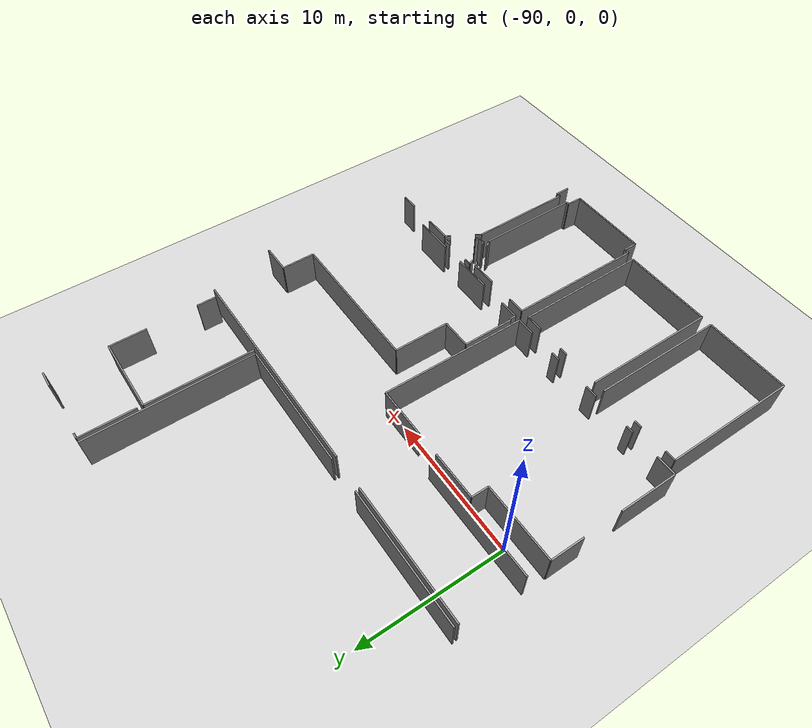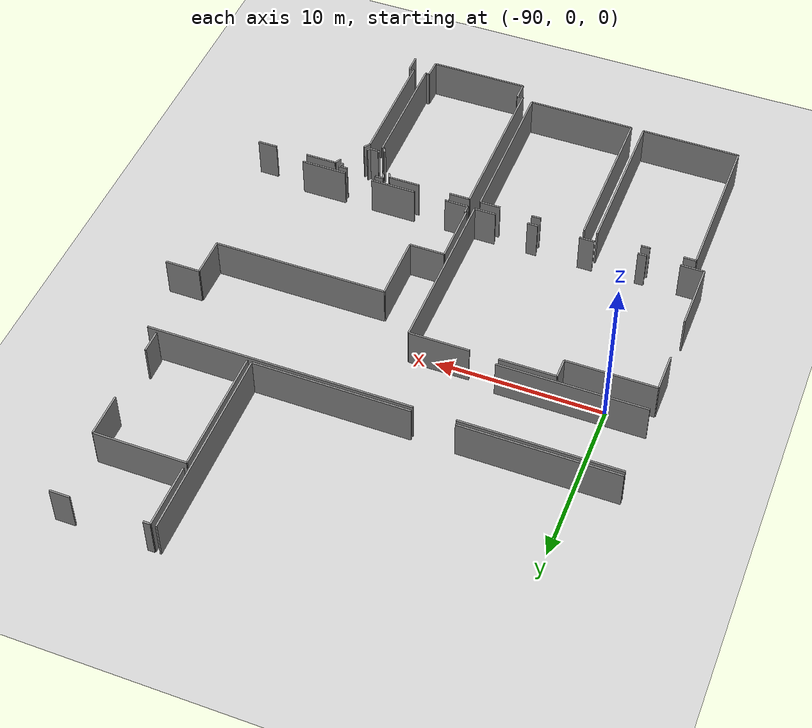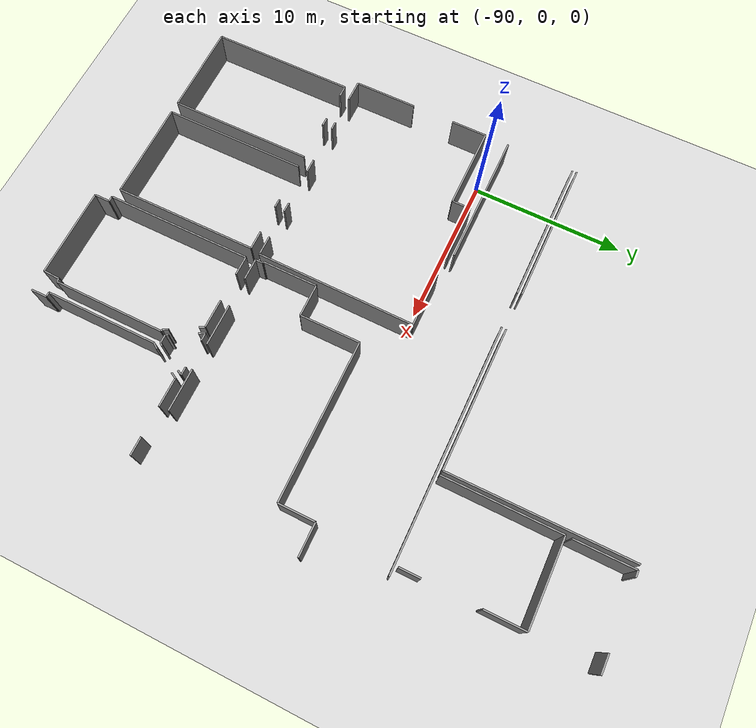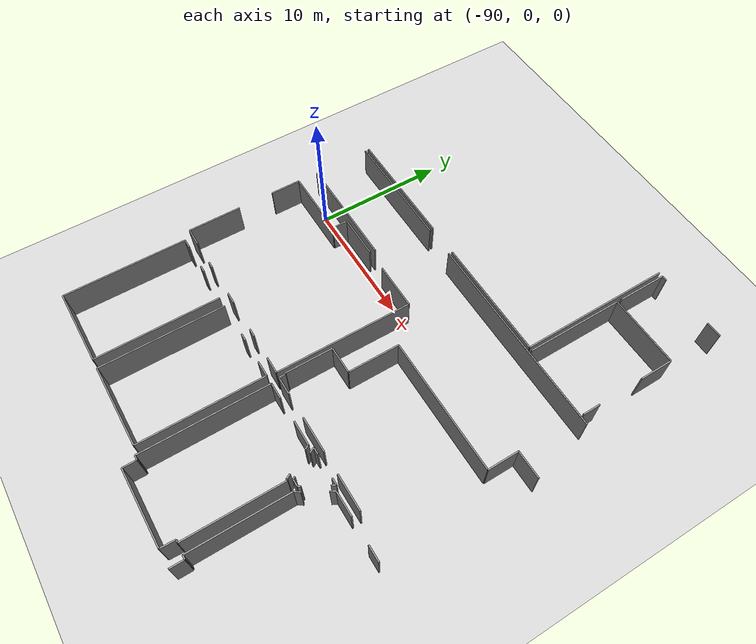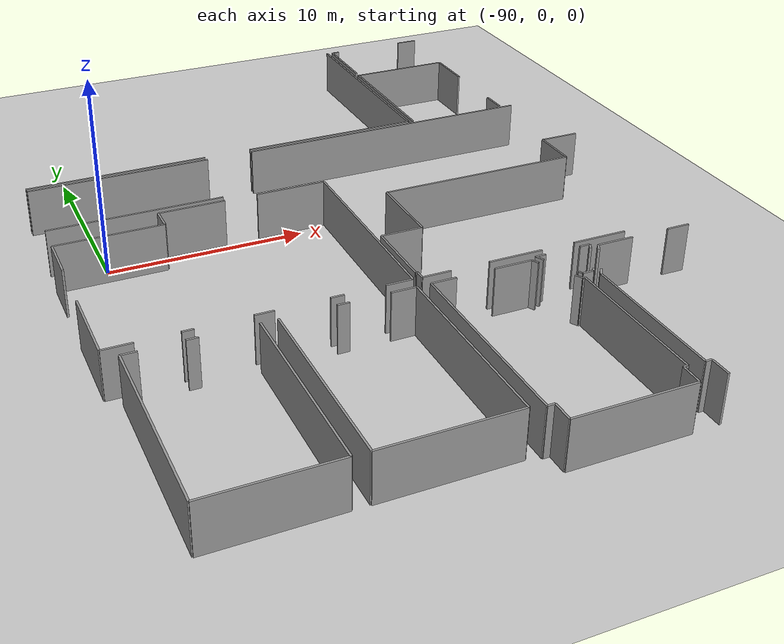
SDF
<sdf version="1.6">
 <world name="default">
  <model name="ground_plane">
   <static>1</static>
   <link name="link">
    <collision name="collision">
     <geometry><plane><normal>0 0 1</normal><size>100 100</size></plane></geometry>
     <surface><friction><ode><mu>100</mu><mu2>50</mu2></ode></friction></surface>
    </collision>
    <visual name="visual">
     <cast_shadows>0</cast_shadows>
     <geometry><plane><normal>0 0 1</normal><size>100 100</size></plane></geometry>
     <material>
      <script><uri>file://media/materials/scripts/gazebo.material</uri><name>Gazebo/Grey</name></script>
     </material>
    </visual>
   </link>
  </model>
  <model name="50037764_PLAN2">
   <static>1</static>
   <link name="Wall_70">
    <collision name="Wall_70_Collision">
     <geometry><box><size>8.79861711322 0.1 2.5</size></box></geometry>
     <pose>4.39930855661 0 1.25 0 0 0</pose>
    </collision>
    <visual name="Wall_70_Visual">
     <pose>4.39930855661 0 1.25 0 0 0</pose>
     <geometry><box><size>8.79861711322 0.1 2.5</size></box></geometry>
     <material>
      <script><uri>file://media/materials/scripts/gazebo.material</uri><name>Gazebo/Grey</name></script>
      <ambient>1 1 1 1</ambient>
     </material>
    </visual>
    <pose>52.0028471198 -20.5119731557 0 0 0 3.14159265359</pose>
   </link>
   <link name="Wall_71">
    <collision name="Wall_71_Collision">
     <geometry><box><size>9.42294981951 0.1 2.5</size></box></geometry>
     <pose>4.71147490976 0 1.25 0 0 0</pose>
    </collision>
    <visual name="Wall_71_Visual">
     <pose>4.71147490976 0 1.25 0 0 0</pose>
     <geometry><box><size>9.42294981951 0.1 2.5</size></box></geometry>
     <material>
      <script><uri>file://media/materials/scripts/gazebo.material</uri><name>Gazebo/Grey</name></script>
      <ambient>1 1 1 1</ambient>
     </material>
    </visual>
    <pose>43.2042300066 -16.0676699375 0 0 0 0.0</pose>
   </link>
   <link name="Wall_72">
    <collision name="Wall_72_Collision">
     <geometry><box><size>15.8955717118 0.1 2.5</size></box></geometry>
     <pose>7.94778585592 0 1.25 0 0 0</pose>
    </collision>
    <visual name="Wall_72_Visual">
     <pose>7.94778585592 0 1.25 0 0 0</pose>
     <geometry><box><size>15.8955717118 0.1 2.5</size></box></geometry>
     <material>
      <script><uri>file://media/materials/scripts/gazebo.material</uri><name>Gazebo/Grey</name></script>
      <ambient>1 1 1 1</ambient>
     </material>
    </visual>
    <pose>55.0833290965 -16.0676699375 0 0 0 0.0</pose>
   </link>
   <link name="Wall_74">
    <collision name="Wall_74_Collision">
     <geometry><box><size>9.39778331384 0.1 2.5</size></box></geometry>
     <pose>4.69889165692 0 1.25 0 0 0</pose>
    </collision>
    <visual name="Wall_74_Visual">
     <pose>4.69889165692 0 1.25 0 0 0</pose>
     <geometry><box><size>9.39778331384 0.1 2.5</size></box></geometry>
     <material>
      <script><uri>file://media/materials/scripts/gazebo.material</uri><name>Gazebo/Grey</name></script>
      <ambient>1 1 1 1</ambient>
     </material>
    </visual>
    <pose>64.4925517312 -15.7861355432 0 0 0 3.14159265359</pose>
   </link>
   <link name="Wall_75">
    <collision name="Wall_75_Collision">
     <geometry><box><size>9.39066551426 0.1 2.5</size></box></geometry>
     <pose>4.69533275713 0 1.25 0 0 0</pose>
    </collision>
    <visual name="Wall_75_Visual">
     <pose>4.69533275713 0 1.25 0 0 0</pose>
     <geometry><box><size>9.39066551426 0.1 2.5</size></box></geometry>
     <material>
      <script><uri>file://media/materials/scripts/gazebo.material</uri><name>Gazebo/Grey</name></script>
      <ambient>1 1 1 1</ambient>
     </material>
    </visual>
    <pose>52.5765926077 -15.7861355432 0 0 0 3.14159265359</pose>
   </link>
   <link name="Wall_79">
    <collision name="Wall_79_Collision">
     <geometry><box><size>11.6799027095 0.1 2.5</size></box></geometry>
     <pose>5.83995135473 0 1.25 0 0 0</pose>
    </collision>
    <visual name="Wall_79_Visual">
     <pose>5.83995135473 0 1.25 0 0 0</pose>
     <geometry><box><size>11.6799027095 0.1 2.5</size></box></geometry>
     <material>
      <script><uri>file://media/materials/scripts/gazebo.material</uri><name>Gazebo/Grey</name></script>
      <ambient>1 1 1 1</ambient>
     </material>
    </visual>
    <pose>64.4579795617 -4.1062840002 0 0 0 -1.56783635181</pose>
   </link>
   <link name="Wall_80">
    <collision name="Wall_80_Collision">
     <geometry><box><size>1.31374243734 0.1 2.5</size></box></geometry>
     <pose>0.656871218669 0 1.25 0 0 0</pose>
    </collision>
    <visual name="Wall_80_Visual">
     <pose>0.656871218669 0 1.25 0 0 0</pose>
     <geometry><box><size>1.31374243734 0.1 2.5</size></box></geometry>
     <material>
      <script><uri>file://media/materials/scripts/gazebo.material</uri><name>Gazebo/Grey</name></script>
      <ambient>1 1 1 1</ambient>
     </material>
    </visual>
    <pose>57.1896893589 -31.3437388784 0 0 0 3.14159265359</pose>
   </link>
   <link name="Wall_81">
    <collision name="Wall_81_Collision">
     <geometry><box><size>0.640093548223 0.1 2.5</size></box></geometry>
     <pose>0.320046774112 0 1.25 0 0 0</pose>
    </collision>
    <visual name="Wall_81_Visual">
     <pose>0.320046774112 0 1.25 0 0 0</pose>
     <geometry><box><size>0.640093548223 0.1 2.5</size></box></geometry>
     <material>
      <script><uri>file://media/materials/scripts/gazebo.material</uri><name>Gazebo/Grey</name></script>
      <ambient>1 1 1 1</ambient>
     </material>
    </visual>
    <pose>53.8898266307 -31.3437388784 0 0 0 3.14159265359</pose>
   </link>
   <link name="Wall_82">
    <collision name="Wall_82_Collision">
     <geometry><box><size>0.912095175149 0.1 2.5</size></box></geometry>
     <pose>0.456047587574 0 1.25 0 0 0</pose>
    </collision>
    <visual name="Wall_82_Visual">
     <pose>0.456047587574 0 1.25 0 0 0</pose>
     <geometry><box><size>0.912095175149 0.1 2.5</size></box></geometry>
     <material>
      <script><uri>file://media/materials/scripts/gazebo.material</uri><name>Gazebo/Grey</name></script>
      <ambient>1 1 1 1</ambient>
     </material>
    </visual>
    <pose>50.6888504754 -31.3437388784 0 0 0 3.14159265359</pose>
   </link>
   <link name="Wall_83">
    <collision name="Wall_83_Collision">
     <geometry><box><size>0.539681732676 0.1 2.5</size></box></geometry>
     <pose>0.269840866338 0 1.25 0 0 0</pose>
    </collision>
    <visual name="Wall_83_Visual">
     <pose>0.269840866338 0 1.25 0 0 0</pose>
     <geometry><box><size>0.539681732676 0.1 2.5</size></box></geometry>
     <material>
      <script><uri>file://media/materials/scripts/gazebo.material</uri><name>Gazebo/Grey</name></script>
      <ambient>1 1 1 1</ambient>
     </material>
    </visual>
    <pose>47.1546087752 -31.3437388784 0 0 0 3.14159265359</pose>
   </link>
   <link name="Wall_84">
    <collision name="Wall_84_Collision">
     <geometry><box><size>1.41644211704 0.1 2.5</size></box></geometry>
     <pose>0.708221058518 0 1.25 0 0 0</pose>
    </collision>
    <visual name="Wall_84_Visual">
     <pose>0.708221058518 0 1.25 0 0 0</pose>
     <geometry><box><size>1.41644211704 0.1 2.5</size></box></geometry>
     <material>
      <script><uri>file://media/materials/scripts/gazebo.material</uri><name>Gazebo/Grey</name></script>
      <ambient>1 1 1 1</ambient>
     </material>
    </visual>
    <pose>44.6133001169 -31.3437388784 0 0 0 3.14159265359</pose>
   </link>
   <link name="Wall_85">
    <collision name="Wall_85_Collision">
     <geometry><box><size>4.10061518125 0.1 2.5</size></box></geometry>
     <pose>2.05030759062 0 1.25 0 0 0</pose>
    </collision>
    <visual name="Wall_85_Visual">
     <pose>2.05030759062 0 1.25 0 0 0</pose>
     <geometry><box><size>4.10061518125 0.1 2.5</size></box></geometry>
     <material>
      <script><uri>file://media/materials/scripts/gazebo.material</uri><name>Gazebo/Grey</name></script>
      <ambient>1 1 1 1</ambient>
     </material>
    </visual>
    <pose>43.1968579999 -31.3437388784 0 0 0 1.57079632679</pose>
   </link>
   <link name="Wall_86">
    <collision name="Wall_86_Collision">
     <geometry><box><size>2.33997661294 0.1 2.5</size></box></geometry>
     <pose>1.16998830647 0 1.25 0 0 0</pose>
    </collision>
    <visual name="Wall_86_Visual">
     <pose>1.16998830647 0 1.25 0 0 0</pose>
     <geometry><box><size>2.33997661294 0.1 2.5</size></box></geometry>
     <material>
      <script><uri>file://media/materials/scripts/gazebo.material</uri><name>Gazebo/Grey</name></script>
      <ambient>1 1 1 1</ambient>
     </material>
    </visual>
    <pose>43.1968579999 -24.455742539 0 0 0 1.57079632679</pose>
   </link>
   <link name="Wall_87">
    <collision name="Wall_87_Collision">
     <geometry><box><size>5.38207331334 0.1 2.5</size></box></geometry>
     <pose>2.69103665667 0 1.25 0 0 0</pose>
    </collision>
    <visual name="Wall_87_Visual">
     <pose>2.69103665667 0 1.25 0 0 0</pose>
     <geometry><box><size>5.38207331334 0.1 2.5</size></box></geometry>
     <material>
      <script><uri>file://media/materials/scripts/gazebo.material</uri><name>Gazebo/Grey</name></script>
      <ambient>1 1 1 1</ambient>
     </material>
    </visual>
    <pose>43.1968579999 -22.1157659261 0 0 0 0.0</pose>
   </link>
   <link name="Wall_88">
    <collision name="Wall_88_Collision">
     <geometry><box><size>1.20824647923 0.1 2.5</size></box></geometry>
     <pose>0.604123239616 0 1.25 0 0 0</pose>
    </collision>
    <visual name="Wall_88_Visual">
     <pose>0.604123239616 0 1.25 0 0 0</pose>
     <geometry><box><size>1.20824647923 0.1 2.5</size></box></geometry>
     <material>
      <script><uri>file://media/materials/scripts/gazebo.material</uri><name>Gazebo/Grey</name></script>
      <ambient>1 1 1 1</ambient>
     </material>
    </visual>
    <pose>48.5789313132 -22.1157659261 0 0 0 1.57079632679</pose>
   </link>
   <link name="Wall_89">
    <collision name="Wall_89_Collision">
     <geometry><box><size>3.38476790889 0.1 2.5</size></box></geometry>
     <pose>1.69238395445 0 1.25 0 0 0</pose>
    </collision>
    <visual name="Wall_89_Visual">
     <pose>1.69238395445 0 1.25 0 0 0</pose>
     <geometry><box><size>3.38476790889 0.1 2.5</size></box></geometry>
     <material>
      <script><uri>file://media/materials/scripts/gazebo.material</uri><name>Gazebo/Grey</name></script>
      <ambient>1 1 1 1</ambient>
     </material>
    </visual>
    <pose>48.5789313132 -20.9075194468 0 0 0 0.0</pose>
   </link>
   <link name="Wall_90">
    <collision name="Wall_90_Collision">
     <geometry><box><size>3.60491128171 0.1 2.5</size></box></geometry>
     <pose>1.80245564086 0 1.25 0 0 0</pose>
    </collision>
    <visual name="Wall_90_Visual">
     <pose>1.80245564086 0 1.25 0 0 0</pose>
     <geometry><box><size>3.60491128171 0.1 2.5</size></box></geometry>
     <material>
      <script><uri>file://media/materials/scripts/gazebo.material</uri><name>Gazebo/Grey</name></script>
      <ambient>1 1 1 1</ambient>
     </material>
    </visual>
    <pose>53.6562102801 -20.9075194468 0 0 0 0.0</pose>
   </link>
   <link name="Wall_91">
    <collision name="Wall_91_Collision">
     <geometry><box><size>10.4364638927 0.1 2.5</size></box></geometry>
     <pose>5.21823194636 0 1.25 0 0 0</pose>
    </collision>
    <visual name="Wall_91_Visual">
     <pose>5.21823194636 0 1.25 0 0 0</pose>
     <geometry><box><size>10.4364638927 0.1 2.5</size></box></geometry>
     <material>
      <script><uri>file://media/materials/scripts/gazebo.material</uri><name>Gazebo/Grey</name></script>
      <ambient>1 1 1 1</ambient>
     </material>
    </visual>
    <pose>57.2611215618 -20.9075194468 0 0 0 -1.57764086355</pose>
   </link>
   <link name="Wall_92">
    <collision name="Wall_92_Collision">
     <geometry><box><size>5.9825105496 0.1 2.5</size></box></geometry>
     <pose>2.9912552748 0 1.25 0 0 0</pose>
    </collision>
    <visual name="Wall_92_Visual">
     <pose>2.9912552748 0 1.25 0 0 0</pose>
     <geometry><box><size>5.9825105496 0.1 2.5</size></box></geometry>
     <material>
      <script><uri>file://media/materials/scripts/gazebo.material</uri><name>Gazebo/Grey</name></script>
      <ambient>1 1 1 1</ambient>
     </material>
    </visual>
    <pose>49.8364939753 -41.402460725 0 0 0 3.14159265359</pose>
   </link>
   <link name="Wall_93">
    <collision name="Wall_93_Collision">
     <geometry><box><size>9.40159642076 0.1 2.5</size></box></geometry>
     <pose>4.70079821038 0 1.25 0 0 0</pose>
    </collision>
    <visual name="Wall_93_Visual">
     <pose>4.70079821038 0 1.25 0 0 0</pose>
     <geometry><box><size>9.40159642076 0.1 2.5</size></box></geometry>
     <material>
      <script><uri>file://media/materials/scripts/gazebo.material</uri><name>Gazebo/Grey</name></script>
      <ambient>1 1 1 1</ambient>
     </material>
    </visual>
    <pose>43.8539834257 -41.402460725 0 0 0 1.57079632679</pose>
   </link>
   <link name="Wall_94">
    <collision name="Wall_94_Collision">
     <geometry><box><size>0.744826884946 0.1 2.5</size></box></geometry>
     <pose>0.372413442473 0 1.25 0 0 0</pose>
    </collision>
    <visual name="Wall_94_Visual">
     <pose>0.372413442473 0 1.25 0 0 0</pose>
     <geometry><box><size>0.744826884946 0.1 2.5</size></box></geometry>
     <material>
      <script><uri>file://media/materials/scripts/gazebo.material</uri><name>Gazebo/Grey</name></script>
      <ambient>1 1 1 1</ambient>
     </material>
    </visual>
    <pose>43.8539834257 -32.0008643042 0 0 0 0.0</pose>
   </link>
   <link name="Wall_95">
    <collision name="Wall_95_Collision">
     <geometry><box><size>0.549087396411 0.1 2.5</size></box></geometry>
     <pose>0.274543698205 0 1.25 0 0 0</pose>
    </collision>
    <visual name="Wall_95_Visual">
     <pose>0.274543698205 0 1.25 0 0 0</pose>
     <geometry><box><size>0.549087396411 0.1 2.5</size></box></geometry>
     <material>
      <script><uri>file://media/materials/scripts/gazebo.material</uri><name>Gazebo/Grey</name></script>
      <ambient>1 1 1 1</ambient>
     </material>
    </visual>
    <pose>46.6004372363 -32.0008643042 0 0 0 0.0</pose>
   </link>
   <link name="Wall_96">
    <collision name="Wall_96_Collision">
     <geometry><box><size>9.4016096315 0.1 2.5</size></box></geometry>
     <pose>4.70080481575 0 1.25 0 0 0</pose>
    </collision>
    <visual name="Wall_96_Visual">
     <pose>4.70080481575 0 1.25 0 0 0</pose>
     <geometry><box><size>9.4016096315 0.1 2.5</size></box></geometry>
     <material>
      <script><uri>file://media/materials/scripts/gazebo.material</uri><name>Gazebo/Grey</name></script>
      <ambient>1 1 1 1</ambient>
     </material>
    </visual>
    <pose>49.8207331334 -32.0008643042 0 0 0 -1.56911992776</pose>
   </link>
   <link name="Wall_97">
    <collision name="Wall_97_Collision">
     <geometry><box><size>6.46016574305 0.1 2.5</size></box></geometry>
     <pose>3.23008287152 0 1.25 0 0 0</pose>
    </collision>
    <visual name="Wall_97_Visual">
     <pose>3.23008287152 0 1.25 0 0 0</pose>
     <geometry><box><size>6.46016574305 0.1 2.5</size></box></geometry>
     <material>
      <script><uri>file://media/materials/scripts/gazebo.material</uri><name>Gazebo/Grey</name></script>
      <ambient>1 1 1 1</ambient>
     </material>
    </visual>
    <pose>57.0803802939 -41.4217804667 0 0 0 3.14159265359</pose>
   </link>
   <link name="Wall_98">
    <collision name="Wall_98_Collision">
     <geometry><box><size>9.42549189079 0.1 2.5</size></box></geometry>
     <pose>4.7127459454 0 1.25 0 0 0</pose>
    </collision>
    <visual name="Wall_98_Visual">
     <pose>4.7127459454 0 1.25 0 0 0</pose>
     <geometry><box><size>9.42549189079 0.1 2.5</size></box></geometry>
     <material>
      <script><uri>file://media/materials/scripts/gazebo.material</uri><name>Gazebo/Grey</name></script>
      <ambient>1 1 1 1</ambient>
     </material>
    </visual>
    <pose>50.6202145508 -41.4217804667 0 0 0 1.57079632679</pose>
   </link>
   <link name="Wall_99">
    <collision name="Wall_99_Collision">
     <geometry><box><size>0.573491280696 0.1 2.5</size></box></geometry>
     <pose>0.286745640348 0 1.25 0 0 0</pose>
    </collision>
    <visual name="Wall_99_Visual">
     <pose>0.286745640348 0 1.25 0 0 0</pose>
     <geometry><box><size>0.573491280696 0.1 2.5</size></box></geometry>
     <material>
      <script><uri>file://media/materials/scripts/gazebo.material</uri><name>Gazebo/Grey</name></script>
      <ambient>1 1 1 1</ambient>
     </material>
    </visual>
    <pose>53.2863389089 -31.9962885759 0 0 0 0.0</pose>
   </link>
   <link name="Wall_100">
    <collision name="Wall_100_Collision">
     <geometry><box><size>1.24231023438 0.1 2.5</size></box></geometry>
     <pose>0.621155117189 0 1.25 0 0 0</pose>
    </collision>
    <visual name="Wall_100_Visual">
     <pose>0.621155117189 0 1.25 0 0 0</pose>
     <geometry><box><size>1.24231023438 0.1 2.5</size></box></geometry>
     <material>
      <script><uri>file://media/materials/scripts/gazebo.material</uri><name>Gazebo/Grey</name></script>
      <ambient>1 1 1 1</ambient>
     </material>
    </visual>
    <pose>55.8190045249 -31.9962885759 0 0 0 0.0</pose>
   </link>
   <link name="Wall_101">
    <collision name="Wall_101_Collision">
     <geometry><box><size>9.4255111733 0.1 2.5</size></box></geometry>
     <pose>4.71275558665 0 1.25 0 0 0</pose>
    </collision>
    <visual name="Wall_101_Visual">
     <pose>4.71275558665 0 1.25 0 0 0</pose>
     <geometry><box><size>9.4255111733 0.1 2.5</size></box></geometry>
     <material>
      <script><uri>file://media/materials/scripts/gazebo.material</uri><name>Gazebo/Grey</name></script>
      <ambient>1 1 1 1</ambient>
     </material>
    </visual>
    <pose>57.0613147593 -31.9962885759 0 0 0 -1.56877356673</pose>
   </link>
   <link name="Wall_106">
    <collision name="Wall_106_Collision">
     <geometry><box><size>2.77543342315 0.1 2.5</size></box></geometry>
     <pose>1.38771671158 0 1.25 0 0 0</pose>
    </collision>
    <visual name="Wall_106_Visual">
     <pose>1.38771671158 0 1.25 0 0 0</pose>
     <geometry><box><size>2.77543342315 0.1 2.5</size></box></geometry>
     <material>
      <script><uri>file://media/materials/scripts/gazebo.material</uri><name>Gazebo/Grey</name></script>
      <ambient>1 1 1 1</ambient>
     </material>
    </visual>
    <pose>68.2494788754 -31.3701764197 0 0 0 3.14159265359</pose>
   </link>
   <link name="Wall_107">
    <collision name="Wall_107_Collision">
     <geometry><box><size>2.7477248462 0.1 2.5</size></box></geometry>
     <pose>1.3738624231 0 1.25 0 0 0</pose>
    </collision>
    <visual name="Wall_107_Visual">
     <pose>1.3738624231 0 1.25 0 0 0</pose>
     <geometry><box><size>2.7477248462 0.1 2.5</size></box></geometry>
     <material>
      <script><uri>file://media/materials/scripts/gazebo.material</uri><name>Gazebo/Grey</name></script>
      <ambient>1 1 1 1</ambient>
     </material>
    </visual>
    <pose>63.7510295389 -31.3701764197 0 0 0 3.14159265359</pose>
   </link>
   <link name="Wall_108">
    <collision name="Wall_108_Collision">
     <geometry><box><size>1.42940668056 0.1 2.5</size></box></geometry>
     <pose>0.714703340282 0 1.25 0 0 0</pose>
    </collision>
    <visual name="Wall_108_Visual">
     <pose>0.714703340282 0 1.25 0 0 0</pose>
     <geometry><box><size>1.42940668056 0.1 2.5</size></box></geometry>
     <material>
      <script><uri>file://media/materials/scripts/gazebo.material</uri><name>Gazebo/Grey</name></script>
      <ambient>1 1 1 1</ambient>
     </material>
    </visual>
    <pose>59.0586201637 -31.3701764197 0 0 0 3.14159265359</pose>
   </link>
   <link name="Wall_109">
    <collision name="Wall_109_Collision">
     <geometry><box><size>0.489602928466 0.1 2.5</size></box></geometry>
     <pose>0.244801464233 0 1.25 0 0 0</pose>
    </collision>
    <visual name="Wall_109_Visual">
     <pose>0.244801464233 0 1.25 0 0 0</pose>
     <geometry><box><size>0.489602928466 0.1 2.5</size></box></geometry>
     <material>
      <script><uri>file://media/materials/scripts/gazebo.material</uri><name>Gazebo/Grey</name></script>
      <ambient>1 1 1 1</ambient>
     </material>
    </visual>
    <pose>57.6292134831 -31.3701764197 0 0 0 1.57079632679</pose>
   </link>
   <link name="Wall_110">
    <collision name="Wall_110_Collision">
     <geometry><box><size>0.0884640805328 0.1 2.5</size></box></geometry>
     <pose>0.0442320402664 0 1.25 0 0 0</pose>
    </collision>
    <visual name="Wall_110_Visual">
     <pose>0.0442320402664 0 1.25 0 0 0</pose>
     <geometry><box><size>0.0884640805328 0.1 2.5</size></box></geometry>
     <material>
      <script><uri>file://media/materials/scripts/gazebo.material</uri><name>Gazebo/Grey</name></script>
      <ambient>1 1 1 1</ambient>
     </material>
    </visual>
    <pose>57.6292134831 -30.8805734913 0 0 0 3.14159265359</pose>
   </link>
   <link name="Wall_111">
    <collision name="Wall_111_Collision">
     <geometry><box><size>3.64583862932 0.1 2.5</size></box></geometry>
     <pose>1.82291931466 0 1.25 0 0 0</pose>
    </collision>
    <visual name="Wall_111_Visual">
     <pose>1.82291931466 0 1.25 0 0 0</pose>
     <geometry><box><size>3.64583862932 0.1 2.5</size></box></geometry>
     <material>
      <script><uri>file://media/materials/scripts/gazebo.material</uri><name>Gazebo/Grey</name></script>
      <ambient>1 1 1 1</ambient>
     </material>
    </visual>
    <pose>57.5407494026 -30.8805734913 0 0 0 1.57079632679</pose>
   </link>
   <link name="Wall_112">
    <collision name="Wall_112_Collision">
     <geometry><box><size>2.13279780365 0.1 2.5</size></box></geometry>
     <pose>1.06639890183 0 1.25 0 0 0</pose>
    </collision>
    <visual name="Wall_112_Visual">
     <pose>1.06639890183 0 1.25 0 0 0</pose>
     <geometry><box><size>2.13279780365 0.1 2.5</size></box></geometry>
     <material>
      <script><uri>file://media/materials/scripts/gazebo.material</uri><name>Gazebo/Grey</name></script>
      <ambient>1 1 1 1</ambient>
     </material>
    </visual>
    <pose>57.5407494026 -27.234734862 0 0 0 0.0</pose>
   </link>
   <link name="Wall_113">
    <collision name="Wall_113_Collision">
     <geometry><box><size>3.95571711831 0.1 2.5</size></box></geometry>
     <pose>1.97785855915 0 1.25 0 0 0</pose>
    </collision>
    <visual name="Wall_113_Visual">
     <pose>1.97785855915 0 1.25 0 0 0</pose>
     <geometry><box><size>3.95571711831 0.1 2.5</size></box></geometry>
     <material>
      <script><uri>file://media/materials/scripts/gazebo.material</uri><name>Gazebo/Grey</name></script>
      <ambient>1 1 1 1</ambient>
     </material>
    </visual>
    <pose>59.6735472063 -27.234734862 0 0 0 1.57079632679</pose>
   </link>
   <link name="Wall_114">
    <collision name="Wall_114_Collision">
     <geometry><box><size>10.470791601 0.1 2.5</size></box></geometry>
     <pose>5.2353958005 0 1.25 0 0 0</pose>
    </collision>
    <visual name="Wall_114_Visual">
     <pose>5.2353958005 0 1.25 0 0 0</pose>
     <geometry><box><size>10.470791601 0.1 2.5</size></box></geometry>
     <material>
      <script><uri>file://media/materials/scripts/gazebo.material</uri><name>Gazebo/Grey</name></script>
      <ambient>1 1 1 1</ambient>
     </material>
    </visual>
    <pose>59.6735472063 -23.2790177437 0 0 0 0.0</pose>
   </link>
   <link name="Wall_115">
    <collision name="Wall_115_Collision">
     <geometry><box><size>2.36565153287 0.1 2.5</size></box></geometry>
     <pose>1.18282576643 0 1.25 0 0 0</pose>
    </collision>
    <visual name="Wall_115_Visual">
     <pose>1.18282576643 0 1.25 0 0 0</pose>
     <geometry><box><size>2.36565153287 0.1 2.5</size></box></geometry>
     <material>
      <script><uri>file://media/materials/scripts/gazebo.material</uri><name>Gazebo/Grey</name></script>
      <ambient>1 1 1 1</ambient>
     </material>
    </visual>
    <pose>70.1443388073 -23.2790177437 0 0 0 1.57079632679</pose>
   </link>
   <link name="Wall_116">
    <collision name="Wall_116_Collision">
     <geometry><box><size>2.10229294829 0.1 2.5</size></box></geometry>
     <pose>1.05114647415 0 1.25 0 0 0</pose>
    </collision>
    <visual name="Wall_116_Visual">
     <pose>1.05114647415 0 1.25 0 0 0</pose>
     <geometry><box><size>2.10229294829 0.1 2.5</size></box></geometry>
     <material>
      <script><uri>file://media/materials/scripts/gazebo.material</uri><name>Gazebo/Grey</name></script>
      <ambient>1 1 1 1</ambient>
     </material>
    </visual>
    <pose>70.1443388073 -20.9133662108 0 0 0 0.0</pose>
   </link>
   <link name="Wall_126">
    <collision name="Wall_126_Collision">
     <geometry><box><size>3.79610046266 0.1 2.5</size></box></geometry>
     <pose>1.89805023133 0 1.25 0 0 0</pose>
    </collision>
    <visual name="Wall_126_Visual">
     <pose>1.89805023133 0 1.25 0 0 0</pose>
     <geometry><box><size>3.79610046266 0.1 2.5</size></box></geometry>
     <material>
      <script><uri>file://media/materials/scripts/gazebo.material</uri><name>Gazebo/Grey</name></script>
      <ambient>1 1 1 1</ambient>
     </material>
    </visual>
    <pose>64.7930245564 -7.92882200417 0 0 0 1.57079632679</pose>
   </link>
   <link name="Wall_127">
    <collision name="Wall_127_Collision">
     <geometry><box><size>0.415120239972 0.1 2.5</size></box></geometry>
     <pose>0.207560119986 0 1.25 0 0 0</pose>
    </collision>
    <visual name="Wall_127_Visual">
     <pose>0.207560119986 0 1.25 0 0 0</pose>
     <geometry><box><size>0.415120239972 0.1 2.5</size></box></geometry>
     <material>
      <script><uri>file://media/materials/scripts/gazebo.material</uri><name>Gazebo/Grey</name></script>
      <ambient>1 1 1 1</ambient>
     </material>
    </visual>
    <pose>64.7930245564 -4.13272154151 0 0 0 0.0</pose>
   </link>
   <link name="Wall_128">
    <collision name="Wall_128_Collision">
     <geometry><box><size>1.19960343688 0.1 2.5</size></box></geometry>
     <pose>0.59980171844 0 1.25 0 0 0</pose>
    </collision>
    <visual name="Wall_128_Visual">
     <pose>0.59980171844 0 1.25 0 0 0</pose>
     <geometry><box><size>1.19960343688 0.1 2.5</size></box></geometry>
     <material>
      <script><uri>file://media/materials/scripts/gazebo.material</uri><name>Gazebo/Grey</name></script>
      <ambient>1 1 1 1</ambient>
     </material>
    </visual>
    <pose>69.4206111139 -4.13272154151 0 0 0 0.0</pose>
   </link>
   <link name="Wall_133">
    <collision name="Wall_133_Collision">
     <geometry><box><size>7.51743860898 0.1 2.5</size></box></geometry>
     <pose>3.75871930449 0 1.25 0 0 0</pose>
    </collision>
    <visual name="Wall_133_Visual">
     <pose>3.75871930449 0 1.25 0 0 0</pose>
     <geometry><box><size>7.51743860898 0.1 2.5</size></box></geometry>
     <material>
      <script><uri>file://media/materials/scripts/gazebo.material</uri><name>Gazebo/Grey</name></script>
      <ambient>1 1 1 1</ambient>
     </material>
    </visual>
    <pose>64.778280543 -15.8301133764 0 0 0 1.57079632679</pose>
   </link>
   <link name="Wall_134">
    <collision name="Wall_134_Collision">
     <geometry><box><size>5.53230972596 0.1 2.5</size></box></geometry>
     <pose>2.76615486298 0 1.25 0 0 0</pose>
    </collision>
    <visual name="Wall_134_Visual">
     <pose>2.76615486298 0 1.25 0 0 0</pose>
     <geometry><box><size>5.53230972596 0.1 2.5</size></box></geometry>
     <material>
      <script><uri>file://media/materials/scripts/gazebo.material</uri><name>Gazebo/Grey</name></script>
      <ambient>1 1 1 1</ambient>
     </material>
    </visual>
    <pose>64.778280543 -8.3126747674 0 0 0 0.0</pose>
   </link>
   <link name="Wall_135">
    <collision name="Wall_135_Collision">
     <geometry><box><size>2.58444760791 0.1 2.5</size></box></geometry>
     <pose>1.29222380396 0 1.25 0 0 0</pose>
    </collision>
    <visual name="Wall_135_Visual">
     <pose>1.29222380396 0 1.25 0 0 0</pose>
     <geometry><box><size>2.58444760791 0.1 2.5</size></box></geometry>
     <material>
      <script><uri>file://media/materials/scripts/gazebo.material</uri><name>Gazebo/Grey</name></script>
      <ambient>1 1 1 1</ambient>
     </material>
    </visual>
    <pose>70.310590269 -8.3126747674 0 0 0 -1.57079632679</pose>
   </link>
   <link name="Wall_136">
    <collision name="Wall_136_Collision">
     <geometry><box><size>1.35285563881 0.1 2.5</size></box></geometry>
     <pose>0.676427819407 0 1.25 0 0 0</pose>
    </collision>
    <visual name="Wall_136_Visual">
     <pose>0.676427819407 0 1.25 0 0 0</pose>
     <geometry><box><size>1.35285563881 0.1 2.5</size></box></geometry>
     <material>
      <script><uri>file://media/materials/scripts/gazebo.material</uri><name>Gazebo/Grey</name></script>
      <ambient>1 1 1 1</ambient>
     </material>
    </visual>
    <pose>70.310590269 -14.4772738828 0 0 0 -1.56591080063</pose>
   </link>
   <link name="Wall_143">
    <collision name="Wall_143_Collision">
     <geometry><box><size>0.546291118003 0.1 2.5</size></box></geometry>
     <pose>0.273145559001 0 1.25 0 0 0</pose>
    </collision>
    <visual name="Wall_143_Visual">
     <pose>0.273145559001 0 1.25 0 0 0</pose>
     <geometry><box><size>0.546291118003 0.1 2.5</size></box></geometry>
     <material>
      <script><uri>file://media/materials/scripts/gazebo.material</uri><name>Gazebo/Grey</name></script>
      <ambient>1 1 1 1</ambient>
     </material>
    </visual>
    <pose>64.8728455946 -33.875641873 0 0 0 3.14159265359</pose>
   </link>
   <link name="Wall_144">
    <collision name="Wall_144_Collision">
     <geometry><box><size>0.191516350281 0.1 2.5</size></box></geometry>
     <pose>0.0957581751406 0 1.25 0 0 0</pose>
    </collision>
    <visual name="Wall_144_Visual">
     <pose>0.0957581751406 0 1.25 0 0 0</pose>
     <geometry><box><size>0.191516350281 0.1 2.5</size></box></geometry>
     <material>
      <script><uri>file://media/materials/scripts/gazebo.material</uri><name>Gazebo/Grey</name></script>
      <ambient>1 1 1 1</ambient>
     </material>
    </visual>
    <pose>64.3265544766 -33.875641873 0 0 0 2.09027171334</pose>
   </link>
   <link name="Wall_145">
    <collision name="Wall_145_Collision">
     <geometry><box><size>0.420065645272 0.1 2.5</size></box></geometry>
     <pose>0.210032822636 0 1.25 0 0 0</pose>
    </collision>
    <visual name="Wall_145_Visual">
     <pose>0.210032822636 0 1.25 0 0 0</pose>
     <geometry><box><size>0.420065645272 0.1 2.5</size></box></geometry>
     <material>
      <script><uri>file://media/materials/scripts/gazebo.material</uri><name>Gazebo/Grey</name></script>
      <ambient>1 1 1 1</ambient>
     </material>
    </visual>
    <pose>63.3577711119 -32.1597437592 0 0 0 2.0344439358</pose>
   </link>
   <link name="Wall_146">
    <collision name="Wall_146_Collision">
     <geometry><box><size>0.534902600011 0.1 2.5</size></box></geometry>
     <pose>0.267451300005 0 1.25 0 0 0</pose>
    </collision>
    <visual name="Wall_146_Visual">
     <pose>0.267451300005 0 1.25 0 0 0</pose>
     <geometry><box><size>0.534902600011 0.1 2.5</size></box></geometry>
     <material>
      <script><uri>file://media/materials/scripts/gazebo.material</uri><name>Gazebo/Grey</name></script>
      <ambient>1 1 1 1</ambient>
     </material>
    </visual>
    <pose>63.1699120443 -31.7840256241 0 0 0 0.0137823972197</pose>
   </link>
   <link name="Wall_147">
    <collision name="Wall_147_Collision">
     <geometry><box><size>0.537168774722 0.1 2.5</size></box></geometry>
     <pose>0.268584387361 0 1.25 0 0 0</pose>
    </collision>
    <visual name="Wall_147_Visual">
     <pose>0.268584387361 0 1.25 0 0 0</pose>
     <geometry><box><size>0.537168774722 0.1 2.5</size></box></geometry>
     <material>
      <script><uri>file://media/materials/scripts/gazebo.material</uri><name>Gazebo/Grey</name></script>
      <ambient>1 1 1 1</ambient>
     </material>
    </visual>
    <pose>65.5185316996 -31.7860592811 0 0 0 0.0104113606659</pose>
   </link>
   <link name="Wall_148">
    <collision name="Wall_148_Collision">
     <geometry><box><size>0.349320554235 0.1 2.5</size></box></geometry>
     <pose>0.174660277117 0 1.25 0 0 0</pose>
    </collision>
    <visual name="Wall_148_Visual">
     <pose>0.174660277117 0 1.25 0 0 0</pose>
     <geometry><box><size>0.349320554235 0.1 2.5</size></box></geometry>
     <material>
      <script><uri>file://media/materials/scripts/gazebo.material</uri><name>Gazebo/Grey</name></script>
      <ambient>1 1 1 1</ambient>
     </material>
    </visual>
    <pose>66.055671361 -31.7804667243 0 0 0 -2.01296286545</pose>
   </link>
   <link name="Wall_149">
    <collision name="Wall_149_Collision">
     <geometry><box><size>0.232560623758 0.1 2.5</size></box></geometry>
     <pose>0.116280311879 0 1.25 0 0 0</pose>
    </collision>
    <visual name="Wall_149_Visual">
     <pose>0.116280311879 0 1.25 0 0 0</pose>
     <geometry><box><size>0.232560623758 0.1 2.5</size></box></geometry>
     <material>
      <script><uri>file://media/materials/scripts/gazebo.material</uri><name>Gazebo/Grey</name></script>
      <ambient>1 1 1 1</ambient>
     </material>
    </visual>
    <pose>65.0052875083 -33.6844781128 0 0 0 -2.17668665233</pose>
   </link>
   <link name="Wall_157">
    <collision name="Wall_157_Collision">
     <geometry><box><size>5.86430423509 0.1 2.5</size></box></geometry>
     <pose>2.93215211755 0 1.25 0 0 0</pose>
    </collision>
    <visual name="Wall_157_Visual">
     <pose>2.93215211755 0 1.25 0 0 0</pose>
     <geometry><box><size>5.86430423509 0.1 2.5</size></box></geometry>
     <material>
      <script><uri>file://media/materials/scripts/gazebo.material</uri><name>Gazebo/Grey</name></script>
      <ambient>1 1 1 1</ambient>
     </material>
    </visual>
    <pose>63.963800905 -42.6424830952 0 0 0 3.14159265359</pose>
   </link>
   <link name="Wall_158">
    <collision name="Wall_158_Collision">
     <geometry><box><size>1.02369210433 0.1 2.5</size></box></geometry>
     <pose>0.511846052163 0 1.25 0 0 0</pose>
    </collision>
    <visual name="Wall_158_Visual">
     <pose>0.511846052163 0 1.25 0 0 0</pose>
     <geometry><box><size>1.02369210433 0.1 2.5</size></box></geometry>
     <material>
      <script><uri>file://media/materials/scripts/gazebo.material</uri><name>Gazebo/Grey</name></script>
      <ambient>1 1 1 1</ambient>
     </material>
    </visual>
    <pose>58.0994966699 -42.6424830952 0 0 0 1.57079632679</pose>
   </link>
   <link name="Wall_159">
    <collision name="Wall_159_Collision">
     <geometry><box><size>0.353856322131 0.1 2.5</size></box></geometry>
     <pose>0.176928161066 0 1.25 0 0 0</pose>
    </collision>
    <visual name="Wall_159_Visual">
     <pose>0.176928161066 0 1.25 0 0 0</pose>
     <geometry><box><size>0.353856322131 0.1 2.5</size></box></geometry>
     <material>
      <script><uri>file://media/materials/scripts/gazebo.material</uri><name>Gazebo/Grey</name></script>
      <ambient>1 1 1 1</ambient>
     </material>
    </visual>
    <pose>58.0994966699 -41.6187909909 0 0 0 3.14159265359</pose>
   </link>
   <link name="Wall_160">
    <collision name="Wall_160_Collision">
     <geometry><box><size>9.62936600742 0.1 2.5</size></box></geometry>
     <pose>4.81468300371 0 1.25 0 0 0</pose>
    </collision>
    <visual name="Wall_160_Visual">
     <pose>4.81468300371 0 1.25 0 0 0</pose>
     <geometry><box><size>9.62936600742 0.1 2.5</size></box></geometry>
     <material>
      <script><uri>file://media/materials/scripts/gazebo.material</uri><name>Gazebo/Grey</name></script>
      <ambient>1 1 1 1</ambient>
     </material>
    </visual>
    <pose>57.7456403478 -41.6187909909 0 0 0 1.57079632679</pose>
   </link>
   <link name="Wall_161">
    <collision name="Wall_161_Collision">
     <geometry><box><size>1.2651888759 0.1 2.5</size></box></geometry>
     <pose>0.632594437948 0 1.25 0 0 0</pose>
    </collision>
    <visual name="Wall_161_Visual">
     <pose>0.632594437948 0 1.25 0 0 0</pose>
     <geometry><box><size>1.2651888759 0.1 2.5</size></box></geometry>
     <material>
      <script><uri>file://media/materials/scripts/gazebo.material</uri><name>Gazebo/Grey</name></script>
      <ambient>1 1 1 1</ambient>
     </material>
    </visual>
    <pose>57.7456403478 -31.9894249835 0 0 0 0.0</pose>
   </link>
   <link name="Wall_162">
    <collision name="Wall_162_Collision">
     <geometry><box><size>1.89638517464 0.1 2.5</size></box></geometry>
     <pose>0.94819258732 0 1.25 0 0 0</pose>
    </collision>
    <visual name="Wall_162_Visual">
     <pose>0.94819258732 0 1.25 0 0 0</pose>
     <geometry><box><size>1.89638517464 0.1 2.5</size></box></geometry>
     <material>
      <script><uri>file://media/materials/scripts/gazebo.material</uri><name>Gazebo/Grey</name></script>
      <ambient>1 1 1 1</ambient>
     </material>
    </visual>
    <pose>60.9412781534 -31.9894249835 0 0 0 0.0</pose>
   </link>
   <link name="Wall_163">
    <collision name="Wall_163_Collision">
     <geometry><box><size>0.365776851202 0.1 2.5</size></box></geometry>
     <pose>0.182888425601 0 1.25 0 0 0</pose>
    </collision>
    <visual name="Wall_163_Visual">
     <pose>0.182888425601 0 1.25 0 0 0</pose>
     <geometry><box><size>0.365776851202 0.1 2.5</size></box></geometry>
     <material>
      <script><uri>file://media/materials/scripts/gazebo.material</uri><name>Gazebo/Grey</name></script>
      <ambient>1 1 1 1</ambient>
     </material>
    </visual>
    <pose>62.8376633281 -31.9894249835 0 0 0 -1.07699616757</pose>
   </link>
   <link name="Wall_164">
    <collision name="Wall_164_Collision">
     <geometry><box><size>0.380723954161 0.1 2.5</size></box></geometry>
     <pose>0.19036197708 0 1.25 0 0 0</pose>
    </collision>
    <visual name="Wall_164_Visual">
     <pose>0.19036197708 0 1.25 0 0 0</pose>
     <geometry><box><size>0.380723954161 0.1 2.5</size></box></geometry>
     <material>
      <script><uri>file://media/materials/scripts/gazebo.material</uri><name>Gazebo/Grey</name></script>
      <ambient>1 1 1 1</ambient>
     </material>
    </visual>
    <pose>63.9228735574 -33.8814886369 0 0 0 -1.0731015273</pose>
   </link>
   <link name="Wall_165">
    <collision name="Wall_165_Collision">
     <geometry><box><size>0.115053651857 0.1 2.5</size></box></geometry>
     <pose>0.0575268259284 0 1.25 0 0 0</pose>
    </collision>
    <visual name="Wall_165_Visual">
     <pose>0.0575268259284 0 1.25 0 0 0</pose>
     <geometry><box><size>0.115053651857 0.1 2.5</size></box></geometry>
     <material>
      <script><uri>file://media/materials/scripts/gazebo.material</uri><name>Gazebo/Grey</name></script>
      <ambient>1 1 1 1</ambient>
     </material>
    </visual>
    <pose>64.1046316539 -34.2160252173 0 0 0 -0.0840586628236</pose>
   </link>
   <link name="Wall_166">
    <collision name="Wall_166_Collision">
     <geometry><box><size>7.32980832783 0.1 2.5</size></box></geometry>
     <pose>3.66490416391 0 1.25 0 0 0</pose>
    </collision>
    <visual name="Wall_166_Visual">
     <pose>3.66490416391 0 1.25 0 0 0</pose>
     <geometry><box><size>7.32980832783 0.1 2.5</size></box></geometry>
     <material>
      <script><uri>file://media/materials/scripts/gazebo.material</uri><name>Gazebo/Grey</name></script>
      <ambient>1 1 1 1</ambient>
     </material>
    </visual>
    <pose>64.2192790686 -34.2256850882 0 0 0 -1.57079632679</pose>
   </link>
   <link name="Wall_167">
    <collision name="Wall_167_Collision">
     <geometry><box><size>0.219889165692 0.1 2.5</size></box></geometry>
     <pose>0.109944582846 0 1.25 0 0 0</pose>
    </collision>
    <visual name="Wall_167_Visual">
     <pose>0.109944582846 0 1.25 0 0 0</pose>
     <geometry><box><size>0.219889165692 0.1 2.5</size></box></geometry>
     <material>
      <script><uri>file://media/materials/scripts/gazebo.material</uri><name>Gazebo/Grey</name></script>
      <ambient>1 1 1 1</ambient>
     </material>
    </visual>
    <pose>64.2192790686 -41.555493416 0 0 0 3.14159265359</pose>
   </link>
   <link name="Wall_168">
    <collision name="Wall_168_Collision">
     <geometry><box><size>1.08757213068 0.1 2.5</size></box></geometry>
     <pose>0.543786065342 0 1.25 0 0 0</pose>
    </collision>
    <visual name="Wall_168_Visual">
     <pose>0.543786065342 0 1.25 0 0 0</pose>
     <geometry><box><size>1.08757213068 0.1 2.5</size></box></geometry>
     <material>
      <script><uri>file://media/materials/scripts/gazebo.material</uri><name>Gazebo/Grey</name></script>
      <ambient>1 1 1 1</ambient>
     </material>
    </visual>
    <pose>63.9993899029 -41.555493416 0 0 0 -1.60352551461</pose>
   </link>
   <link name="Wall_170">
    <collision name="Wall_170_Collision">
     <geometry><box><size>1.04301184605 0.1 2.5</size></box></geometry>
     <pose>0.521505923026 0 1.25 0 0 0</pose>
    </collision>
    <visual name="Wall_170_Visual">
     <pose>0.521505923026 0 1.25 0 0 0</pose>
     <geometry><box><size>1.04301184605 0.1 2.5</size></box></geometry>
     <material>
      <script><uri>file://media/materials/scripts/gazebo.material</uri><name>Gazebo/Grey</name></script>
      <ambient>1 1 1 1</ambient>
     </material>
    </visual>
    <pose>65.3441456098 -42.6389241954 0 0 0 1.57079632679</pose>
   </link>
   <link name="Wall_171">
    <collision name="Wall_171_Collision">
     <geometry><box><size>0.307844831969 0.1 2.5</size></box></geometry>
     <pose>0.153922415985 0 1.25 0 0 0</pose>
    </collision>
    <visual name="Wall_171_Visual">
     <pose>0.153922415985 0 1.25 0 0 0</pose>
     <geometry><box><size>0.307844831969 0.1 2.5</size></box></geometry>
     <material>
      <script><uri>file://media/materials/scripts/gazebo.material</uri><name>Gazebo/Grey</name></script>
      <ambient>1 1 1 1</ambient>
     </material>
    </visual>
    <pose>65.3441456098 -41.5959123494 0 0 0 3.14159265359</pose>
   </link>
   <link name="Wall_172">
    <collision name="Wall_172_Collision">
     <geometry><box><size>7.34963648381 0.1 2.5</size></box></geometry>
     <pose>3.6748182419 0 1.25 0 0 0</pose>
    </collision>
    <visual name="Wall_172_Visual">
     <pose>3.6748182419 0 1.25 0 0 0</pose>
     <geometry><box><size>7.34963648381 0.1 2.5</size></box></geometry>
     <material>
      <script><uri>file://media/materials/scripts/gazebo.material</uri><name>Gazebo/Grey</name></script>
      <ambient>1 1 1 1</ambient>
     </material>
    </visual>
    <pose>65.0363007779 -41.5959123494 0 0 0 1.57079632679</pose>
   </link>
   <link name="Wall_173">
    <collision name="Wall_173_Collision">
     <geometry><box><size>0.456439498956 0.1 2.5</size></box></geometry>
     <pose>0.228219749478 0 1.25 0 0 0</pose>
    </collision>
    <visual name="Wall_173_Visual">
     <pose>0.228219749478 0 1.25 0 0 0</pose>
     <geometry><box><size>0.456439498956 0.1 2.5</size></box></geometry>
     <material>
      <script><uri>file://media/materials/scripts/gazebo.material</uri><name>Gazebo/Grey</name></script>
      <ambient>1 1 1 1</ambient>
     </material>
    </visual>
    <pose>65.0363007779 -34.2462758656 0 0 0 0.96595613648</pose>
   </link>
   <link name="Wall_174">
    <collision name="Wall_174_Collision">
     <geometry><box><size>0.420731919487 0.1 2.5</size></box></geometry>
     <pose>0.210365959743 0 1.25 0 0 0</pose>
    </collision>
    <visual name="Wall_174_Visual">
     <pose>0.210365959743 0 1.25 0 0 0</pose>
     <geometry><box><size>0.420731919487 0.1 2.5</size></box></geometry>
     <material>
      <script><uri>file://media/materials/scripts/gazebo.material</uri><name>Gazebo/Grey</name></script>
      <ambient>1 1 1 1</ambient>
     </material>
    </visual>
    <pose>66.1804870609 -32.3537037979 0 0 0 1.06146777915</pose>
   </link>
   <link name="Wall_175">
    <collision name="Wall_175_Collision">
     <geometry><box><size>1.88596268239 0.1 2.5</size></box></geometry>
     <pose>0.942981341197 0 1.25 0 0 0</pose>
    </collision>
    <visual name="Wall_175_Visual">
     <pose>0.942981341197 0 1.25 0 0 0</pose>
     <geometry><box><size>1.88596268239 0.1 2.5</size></box></geometry>
     <material>
      <script><uri>file://media/materials/scripts/gazebo.material</uri><name>Gazebo/Grey</name></script>
      <ambient>1 1 1 1</ambient>
     </material>
    </visual>
    <pose>66.3856322131 -31.9863744979 0 0 0 0.0</pose>
   </link>
   <link name="Wall_176">
    <collision name="Wall_176_Collision">
     <geometry><box><size>1.19223143017 0.1 2.5</size></box></geometry>
     <pose>0.596115715085 0 1.25 0 0 0</pose>
    </collision>
    <visual name="Wall_176_Visual">
     <pose>0.596115715085 0 1.25 0 0 0</pose>
     <geometry><box><size>1.19223143017 0.1 2.5</size></box></geometry>
     <material>
      <script><uri>file://media/materials/scripts/gazebo.material</uri><name>Gazebo/Grey</name></script>
      <ambient>1 1 1 1</ambient>
     </material>
    </visual>
    <pose>70.2516142153 -31.9863744979 0 0 0 0.0</pose>
   </link>
   <pose>-135.8 21.3069729015 0 0 0 0</pose>
  </model>
 </world>
</sdf>
